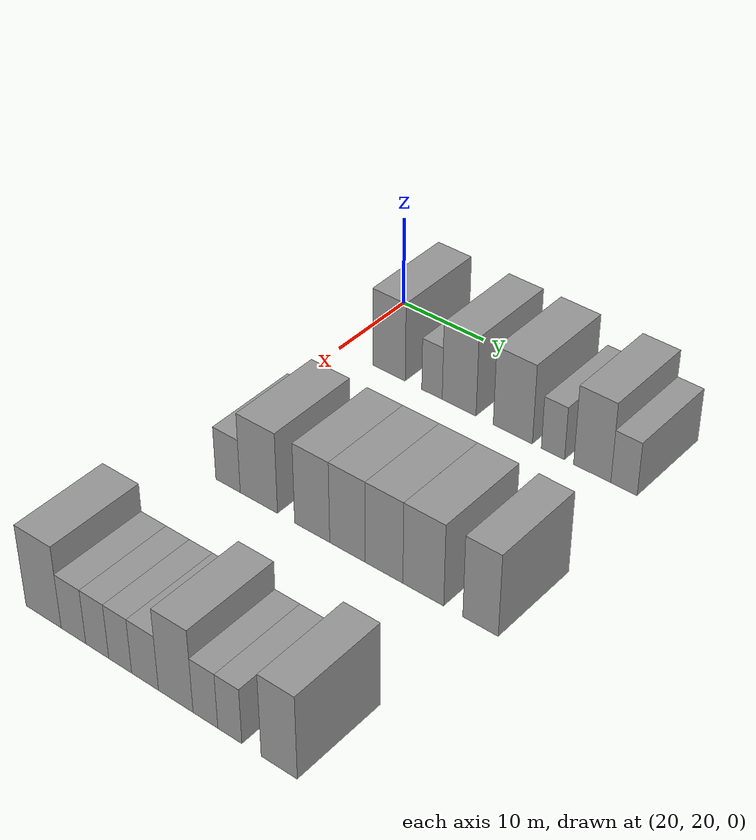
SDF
<sdf version="1.6">
 <world name="default">
  <model name="building_71">
   <static>1</static>
   <pose>25.0000 26.1913 0 0.000000 0.000000 0.000000</pose>
   <link name="link">
    <pose>0 0 4.50 0 0 0</pose>
    <collision name="collision"><geometry><box><size>10.0000 3.9847 9.0000</size></box></geometry></collision>
    <visual name="visual">
     <cast_shadows>0</cast_shadows>
     <geometry><box><size>10.0000 3.9847 9.0000</size></box></geometry>
     <material>
      <script>
       <uri>model://grey_wall/materials/scripts</uri>
       <uri>model://grey_wall/materials/textures</uri>
       <name>vrc/grey_wall</name>
      </script>
     </material>
    </visual>
   </link>
  </model>
  <model name="building_72">
   <static>1</static>
   <pose>25.0000 31.4097 0 0.000000 0.000000 0.000000</pose>
   <link name="link">
    <pose>0 0 3.00 0 0 0</pose>
    <collision name="collision"><geometry><box><size>10.0000 2.4521 6.0000</size></box></geometry></collision>
    <visual name="visual">
     <cast_shadows>0</cast_shadows>
     <geometry><box><size>10.0000 2.4521 6.0000</size></box></geometry>
     <material>
      <script>
       <uri>model://grey_wall/materials/scripts</uri>
       <uri>model://grey_wall/materials/textures</uri>
       <name>vrc/grey_wall</name>
      </script>
     </material>
    </visual>
   </link>
  </model>
  <model name="building_73">
   <static>1</static>
   <pose>25.0000 34.6333 0 0.000000 0.000000 0.000000</pose>
   <link name="link">
    <pose>0 0 4.50 0 0 0</pose>
    <collision name="collision"><geometry><box><size>10.0000 3.9953 9.0000</size></box></geometry></collision>
    <visual name="visual">
     <cast_shadows>0</cast_shadows>
     <geometry><box><size>10.0000 3.9953 9.0000</size></box></geometry>
     <material>
      <script>
       <uri>model://grey_wall/materials/scripts</uri>
       <uri>model://grey_wall/materials/textures</uri>
       <name>vrc/grey_wall</name>
      </script>
     </material>
    </visual>
   </link>
  </model>
  <model name="building_74">
   <static>1</static>
   <pose>25.0000 40.8683 0 0.000000 0.000000 0.000000</pose>
   <link name="link">
    <pose>0 0 4.50 0 0 0</pose>
    <collision name="collision"><geometry><box><size>10.0000 4.4747 9.0000</size></box></geometry></collision>
    <visual name="visual">
     <cast_shadows>0</cast_shadows>
     <geometry><box><size>10.0000 4.4747 9.0000</size></box></geometry>
     <material>
      <script>
       <uri>model://grey_wall/materials/scripts</uri>
       <uri>model://grey_wall/materials/textures</uri>
       <name>vrc/grey_wall</name>
      </script>
     </material>
    </visual>
   </link>
  </model>
  <model name="building_75">
   <static>1</static>
   <pose>25.0000 45.4005 0 0.000000 0.000000 0.000000</pose>
   <link name="link">
    <pose>0 0 3.00 0 0 0</pose>
    <collision name="collision"><geometry><box><size>10.0000 2.5897 6.0000</size></box></geometry></collision>
    <visual name="visual">
     <cast_shadows>0</cast_shadows>
     <geometry><box><size>10.0000 2.5897 6.0000</size></box></geometry>
     <material>
      <script>
       <uri>model://grey_wall/materials/scripts</uri>
       <uri>model://grey_wall/materials/textures</uri>
       <name>vrc/grey_wall</name>
      </script>
     </material>
    </visual>
   </link>
  </model>
  <model name="building_76">
   <static>1</static>
   <pose>25.0000 49.7209 0 0.000000 0.000000 0.000000</pose>
   <link name="link">
    <pose>0 0 4.50 0 0 0</pose>
    <collision name="collision"><geometry><box><size>10.0000 4.0511 9.0000</size></box></geometry></collision>
    <visual name="visual">
     <cast_shadows>0</cast_shadows>
     <geometry><box><size>10.0000 4.0511 9.0000</size></box></geometry>
     <material>
      <script>
       <uri>model://grey_wall/materials/scripts</uri>
       <uri>model://grey_wall/materials/textures</uri>
       <name>vrc/grey_wall</name>
      </script>
     </material>
    </visual>
   </link>
  </model>
  <model name="building_77">
   <static>1</static>
   <pose>25.0000 53.1557 0 0.000000 0.000000 0.000000</pose>
   <link name="link">
    <pose>0 0 3.00 0 0 0</pose>
    <collision name="collision"><geometry><box><size>10.0000 2.8186 6.0000</size></box></geometry></collision>
    <visual name="visual">
     <cast_shadows>0</cast_shadows>
     <geometry><box><size>10.0000 2.8186 6.0000</size></box></geometry>
     <material>
      <script>
       <uri>model://grey_wall/materials/scripts</uri>
       <uri>model://grey_wall/materials/textures</uri>
       <name>vrc/grey_wall</name>
      </script>
     </material>
    </visual>
   </link>
  </model>
  <model name="building_193">
   <static>1</static>
   <pose>47.0000 25.5246 0 0.000000 0.000000 0.000000</pose>
   <link name="link">
    <pose>0 0 3.00 0 0 0</pose>
    <collision name="collision"><geometry><box><size>10.0000 2.9430 6.0000</size></box></geometry></collision>
    <visual name="visual">
     <cast_shadows>0</cast_shadows>
     <geometry><box><size>10.0000 2.9430 6.0000</size></box></geometry>
     <material>
      <script>
       <uri>model://grey_wall/materials/scripts</uri>
       <uri>model://grey_wall/materials/textures</uri>
       <name>vrc/grey_wall</name>
      </script>
     </material>
    </visual>
   </link>
  </model>
  <model name="building_194">
   <static>1</static>
   <pose>47.0000 29.2082 0 0.000000 0.000000 0.000000</pose>
   <link name="link">
    <pose>0 0 4.50 0 0 0</pose>
    <collision name="collision"><geometry><box><size>10.0000 4.4242 9.0000</size></box></geometry></collision>
    <visual name="visual">
     <cast_shadows>0</cast_shadows>
     <geometry><box><size>10.0000 4.4242 9.0000</size></box></geometry>
     <material>
      <script>
       <uri>model://grey_wall/materials/scripts</uri>
       <uri>model://grey_wall/materials/textures</uri>
       <name>vrc/grey_wall</name>
      </script>
     </material>
    </visual>
   </link>
  </model>
  <model name="building_195">
   <static>1</static>
   <pose>47.0000 35.4292 0 0.000000 0.000000 0.000000</pose>
   <link name="link">
    <pose>0 0 4.50 0 0 0</pose>
    <collision name="collision"><geometry><box><size>10.0000 4.0177 9.0000</size></box></geometry></collision>
    <visual name="visual">
     <cast_shadows>0</cast_shadows>
     <geometry><box><size>10.0000 4.0177 9.0000</size></box></geometry>
     <material>
      <script>
       <uri>model://grey_wall/materials/scripts</uri>
       <uri>model://grey_wall/materials/textures</uri>
       <name>vrc/grey_wall</name>
      </script>
     </material>
    </visual>
   </link>
  </model>
  <model name="building_196">
   <static>1</static>
   <pose>47.0000 39.4321 0 0.000000 0.000000 0.000000</pose>
   <link name="link">
    <pose>0 0 4.50 0 0 0</pose>
    <collision name="collision"><geometry><box><size>10.0000 3.9881 9.0000</size></box></geometry></collision>
    <visual name="visual">
     <cast_shadows>0</cast_shadows>
     <geometry><box><size>10.0000 3.9881 9.0000</size></box></geometry>
     <material>
      <script>
       <uri>model://grey_wall/materials/scripts</uri>
       <uri>model://grey_wall/materials/textures</uri>
       <name>vrc/grey_wall</name>
      </script>
     </material>
    </visual>
   </link>
  </model>
  <model name="building_197">
   <static>1</static>
   <pose>47.0000 43.4838 0 0.000000 0.000000 0.000000</pose>
   <link name="link">
    <pose>0 0 4.50 0 0 0</pose>
    <collision name="collision"><geometry><box><size>10.0000 4.1152 9.0000</size></box></geometry></collision>
    <visual name="visual">
     <cast_shadows>0</cast_shadows>
     <geometry><box><size>10.0000 4.1152 9.0000</size></box></geometry>
     <material>
      <script>
       <uri>model://grey_wall/materials/scripts</uri>
       <uri>model://grey_wall/materials/textures</uri>
       <name>vrc/grey_wall</name>
      </script>
     </material>
    </visual>
   </link>
  </model>
  <model name="building_198">
   <static>1</static>
   <pose>47.0000 47.7225 0 0.000000 0.000000 0.000000</pose>
   <link name="link">
    <pose>0 0 4.50 0 0 0</pose>
    <collision name="collision"><geometry><box><size>10.0000 4.3621 9.0000</size></box></geometry></collision>
    <visual name="visual">
     <cast_shadows>0</cast_shadows>
     <geometry><box><size>10.0000 4.3621 9.0000</size></box></geometry>
     <material>
      <script>
       <uri>model://grey_wall/materials/scripts</uri>
       <uri>model://grey_wall/materials/textures</uri>
       <name>vrc/grey_wall</name>
      </script>
     </material>
    </visual>
   </link>
  </model>
  <model name="building_199">
   <static>1</static>
   <pose>47.0000 53.7377 0 0.000000 0.000000 0.000000</pose>
   <link name="link">
    <pose>0 0 4.50 0 0 0</pose>
    <collision name="collision"><geometry><box><size>10.0000 3.6683 9.0000</size></box></geometry></collision>
    <visual name="visual">
     <cast_shadows>0</cast_shadows>
     <geometry><box><size>10.0000 3.6683 9.0000</size></box></geometry>
     <material>
      <script>
       <uri>model://grey_wall/materials/scripts</uri>
       <uri>model://grey_wall/materials/textures</uri>
       <name>vrc/grey_wall</name>
      </script>
     </material>
    </visual>
   </link>
  </model>
  <model name="building_308">
   <static>1</static>
   <pose>69.0000 25.0235 0 0.000000 0.000000 0.000000</pose>
   <link name="link">
    <pose>0 0 4.50 0 0 0</pose>
    <collision name="collision"><geometry><box><size>10.0000 4.1944 9.0000</size></box></geometry></collision>
    <visual name="visual">
     <cast_shadows>0</cast_shadows>
     <geometry><box><size>10.0000 4.1944 9.0000</size></box></geometry>
     <material>
      <script>
       <uri>model://grey_wall/materials/scripts</uri>
       <uri>model://grey_wall/materials/textures</uri>
       <name>vrc/grey_wall</name>
      </script>
     </material>
    </visual>
   </link>
  </model>
  <model name="building_309">
   <static>1</static>
   <pose>69.0000 28.5607 0 0.000000 0.000000 0.000000</pose>
   <link name="link">
    <pose>0 0 3.00 0 0 0</pose>
    <collision name="collision"><geometry><box><size>10.0000 2.8800 6.0000</size></box></geometry></collision>
    <visual name="visual">
     <cast_shadows>0</cast_shadows>
     <geometry><box><size>10.0000 2.8800 6.0000</size></box></geometry>
     <material>
      <script>
       <uri>model://grey_wall/materials/scripts</uri>
       <uri>model://grey_wall/materials/textures</uri>
       <name>vrc/grey_wall</name>
      </script>
     </material>
    </visual>
   </link>
  </model>
  <model name="building_310">
   <static>1</static>
   <pose>69.0000 31.3250 0 0.000000 0.000000 0.000000</pose>
   <link name="link">
    <pose>0 0 3.00 0 0 0</pose>
    <collision name="collision"><geometry><box><size>10.0000 2.6487 6.0000</size></box></geometry></collision>
    <visual name="visual">
     <cast_shadows>0</cast_shadows>
     <geometry><box><size>10.0000 2.6487 6.0000</size></box></geometry>
     <material>
      <script>
       <uri>model://grey_wall/materials/scripts</uri>
       <uri>model://grey_wall/materials/textures</uri>
       <name>vrc/grey_wall</name>
      </script>
     </material>
    </visual>
   </link>
  </model>
  <model name="building_311">
   <static>1</static>
   <pose>69.0000 33.9498 0 0.000000 0.000000 0.000000</pose>
   <link name="link">
    <pose>0 0 3.00 0 0 0</pose>
    <collision name="collision"><geometry><box><size>10.0000 2.6009 6.0000</size></box></geometry></collision>
    <visual name="visual">
     <cast_shadows>0</cast_shadows>
     <geometry><box><size>10.0000 2.6009 6.0000</size></box></geometry>
     <material>
      <script>
       <uri>model://grey_wall/materials/scripts</uri>
       <uri>model://grey_wall/materials/textures</uri>
       <name>vrc/grey_wall</name>
      </script>
     </material>
    </visual>
   </link>
  </model>
  <model name="building_312">
   <static>1</static>
   <pose>69.0000 36.7471 0 0.000000 0.000000 0.000000</pose>
   <link name="link">
    <pose>0 0 3.00 0 0 0</pose>
    <collision name="collision"><geometry><box><size>10.0000 2.9937 6.0000</size></box></geometry></collision>
    <visual name="visual">
     <cast_shadows>0</cast_shadows>
     <geometry><box><size>10.0000 2.9937 6.0000</size></box></geometry>
     <material>
      <script>
       <uri>model://grey_wall/materials/scripts</uri>
       <uri>model://grey_wall/materials/textures</uri>
       <name>vrc/grey_wall</name>
      </script>
     </material>
    </visual>
   </link>
  </model>
  <model name="building_313">
   <static>1</static>
   <pose>69.0000 40.1337 0 0.000000 0.000000 0.000000</pose>
   <link name="link">
    <pose>0 0 4.50 0 0 0</pose>
    <collision name="collision"><geometry><box><size>10.0000 3.7796 9.0000</size></box></geometry></collision>
    <visual name="visual">
     <cast_shadows>0</cast_shadows>
     <geometry><box><size>10.0000 3.7796 9.0000</size></box></geometry>
     <material>
      <script>
       <uri>model://grey_wall/materials/scripts</uri>
       <uri>model://grey_wall/materials/textures</uri>
       <name>vrc/grey_wall</name>
      </script>
     </material>
    </visual>
   </link>
  </model>
  <model name="building_314">
   <static>1</static>
   <pose>69.0000 43.3463 0 0.000000 0.000000 0.000000</pose>
   <link name="link">
    <pose>0 0 3.00 0 0 0</pose>
    <collision name="collision"><geometry><box><size>10.0000 2.6458 6.0000</size></box></geometry></collision>
    <visual name="visual">
     <cast_shadows>0</cast_shadows>
     <geometry><box><size>10.0000 2.6458 6.0000</size></box></geometry>
     <material>
      <script>
       <uri>model://grey_wall/materials/scripts</uri>
       <uri>model://grey_wall/materials/textures</uri>
       <name>vrc/grey_wall</name>
      </script>
     </material>
    </visual>
   </link>
  </model>
  <model name="building_315">
   <static>1</static>
   <pose>69.0000 45.9379 0 0.000000 0.000000 0.000000</pose>
   <link name="link">
    <pose>0 0 3.00 0 0 0</pose>
    <collision name="collision"><geometry><box><size>10.0000 2.5374 6.0000</size></box></geometry></collision>
    <visual name="visual">
     <cast_shadows>0</cast_shadows>
     <geometry><box><size>10.0000 2.5374 6.0000</size></box></geometry>
     <material>
      <script>
       <uri>model://grey_wall/materials/scripts</uri>
       <uri>model://grey_wall/materials/textures</uri>
       <name>vrc/grey_wall</name>
      </script>
     </material>
    </visual>
   </link>
  </model>
  <model name="building_316">
   <static>1</static>
   <pose>69.0000 51.0507 0 0.000000 0.000000 0.000000</pose>
   <link name="link">
    <pose>0 0 4.50 0 0 0</pose>
    <collision name="collision"><geometry><box><size>10.0000 3.6882 9.0000</size></box></geometry></collision>
    <visual name="visual">
     <cast_shadows>0</cast_shadows>
     <geometry><box><size>10.0000 3.6882 9.0000</size></box></geometry>
     <material>
      <script>
       <uri>model://grey_wall/materials/scripts</uri>
       <uri>model://grey_wall/materials/textures</uri>
       <name>vrc/grey_wall</name>
      </script>
     </material>
    </visual>
   </link>
  </model>
 </world>
</sdf>
